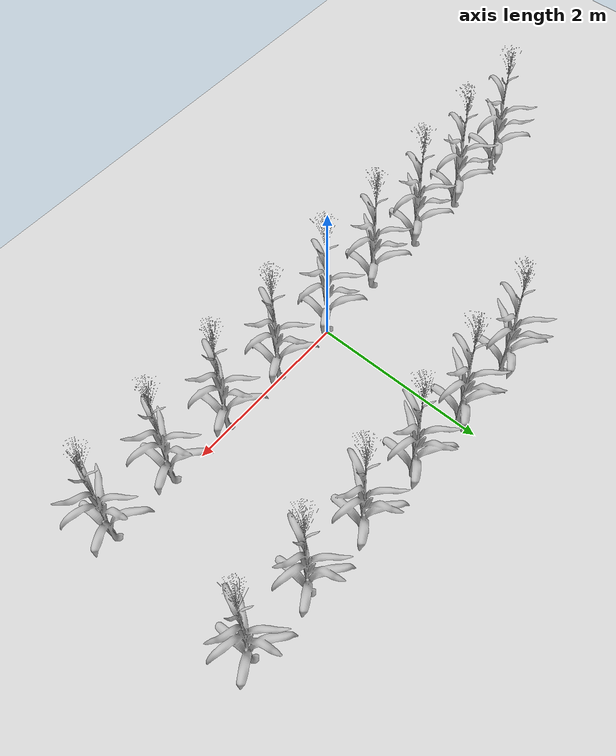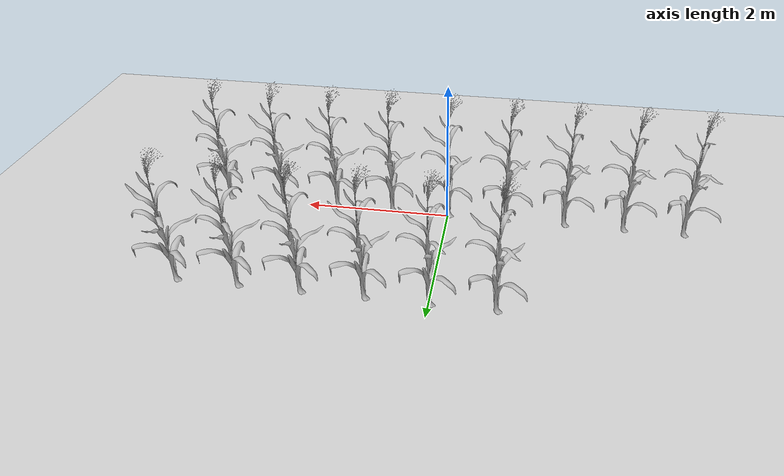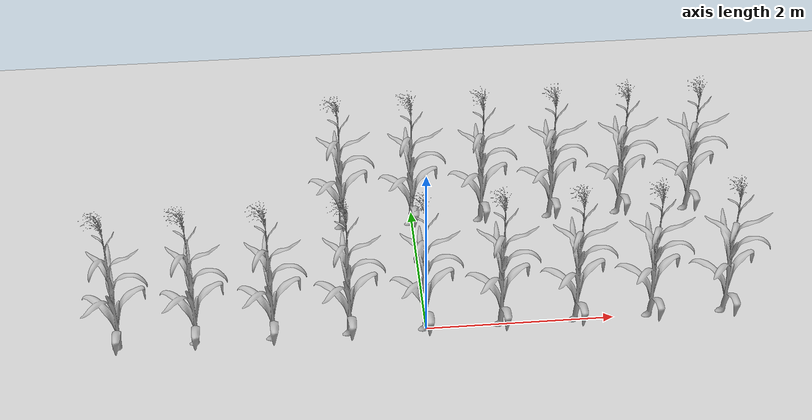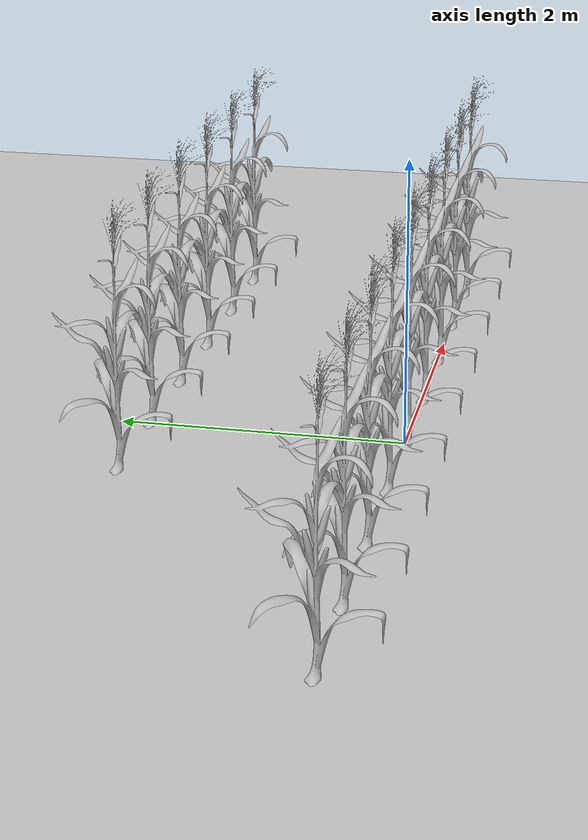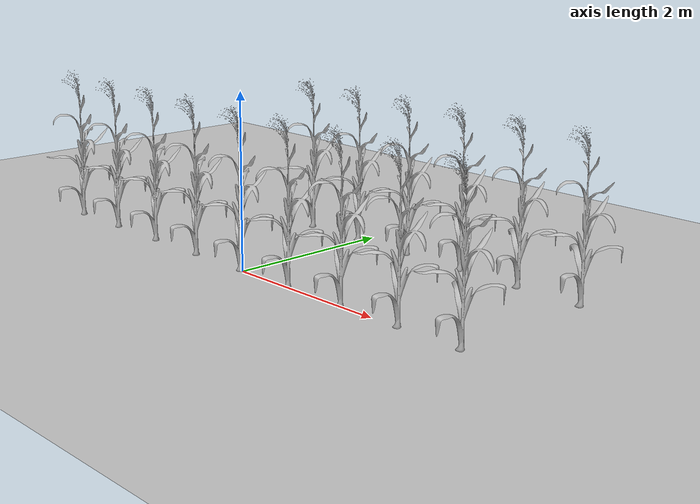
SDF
<sdf version="1.6">
 <world name="default">
  <model name="ground_plane">
   <static>1</static>
   <link name="link">
    <collision name="collision">
     <geometry><plane><normal>0 0 1</normal><size>100 100</size></plane></geometry>
     <surface><friction><ode><mu>100</mu><mu2>50</mu2></ode></friction></surface>
    </collision>
    <visual name="visual">
     <cast_shadows>0</cast_shadows>
     <geometry><plane><normal>0 0 1</normal><size>1000 1000</size></plane></geometry>
     <material>
      <script><uri>file://media/materials/scripts/gazebo.material</uri><name>Gazebo/Grey</name></script>
     </material>
    </visual>
    <velocity_decay><linear>0</linear><angular>0</angular></velocity_decay>
   </link>
  </model>
  <model name="corn_stalk_0,0">
   <static>1</static>
   <link name="link">
    <visual name="visual">
     <geometry><mesh><uri>model://corn/meshes/corn_stack.stl</uri><scale>0.01 0.01 0.01</scale></mesh></geometry>
     <material>
      <script>
       <uri>model://corn/materials/scripts</uri>
       <uri>model://corn/materials/textures</uri>
       <name>corn_stack/Diffuse</name>
      </script>
     </material>
    </visual>
    <collision name="Default">
     <geometry><mesh><uri>model://corn/meshes/corn_stack.stl</uri><scale>0.01 0.01 0.01</scale></mesh></geometry>
    </collision>
   </link>
  </model>
  <model name="corn_stalk_1,0">
   <static>1</static>
   <link name="link">
    <pose>0.8 0 0 0 -0 0</pose>
    <visual name="visual">
     <geometry><mesh><uri>model://corn/meshes/corn_stack.stl</uri><scale>0.01 0.01 0.01</scale></mesh></geometry>
     <material>
      <script>
       <uri>model://corn/materials/scripts</uri>
       <uri>model://corn/materials/textures</uri>
       <name>corn_stack/Diffuse</name>
      </script>
     </material>
    </visual>
    <collision name="Default">
     <geometry><mesh><uri>model://corn/meshes/corn_stack.stl</uri><scale>0.01 0.01 0.01</scale></mesh></geometry>
    </collision>
   </link>
  </model>
  <model name="corn_stalk_2,0">
   <static>1</static>
   <link name="link">
    <pose>1.6 0 0 0 -0 0</pose>
    <visual name="visual">
     <geometry><mesh><uri>model://corn/meshes/corn_stack.stl</uri><scale>0.01 0.01 0.01</scale></mesh></geometry>
     <material>
      <script>
       <uri>model://corn/materials/scripts</uri>
       <uri>model://corn/materials/textures</uri>
       <name>corn_stack/Diffuse</name>
      </script>
     </material>
    </visual>
    <collision name="Default">
     <geometry><mesh><uri>model://corn/meshes/corn_stack.stl</uri><scale>0.01 0.01 0.01</scale></mesh></geometry>
    </collision>
   </link>
  </model>
  <model name="corn_stalk_3,0">
   <static>1</static>
   <link name="link">
    <pose>2.4 0 0 0 -0 0</pose>
    <visual name="visual">
     <geometry><mesh><uri>model://corn/meshes/corn_stack.stl</uri><scale>0.01 0.01 0.01</scale></mesh></geometry>
     <material>
      <script>
       <uri>model://corn/materials/scripts</uri>
       <uri>model://corn/materials/textures</uri>
       <name>corn_stack/Diffuse</name>
      </script>
     </material>
    </visual>
    <collision name="Default">
     <geometry><mesh><uri>model://corn/meshes/corn_stack.stl</uri><scale>0.01 0.01 0.01</scale></mesh></geometry>
    </collision>
   </link>
  </model>
  <model name="corn_stalk_4,0">
   <static>1</static>
   <link name="link">
    <pose>3.2 0 0 0 -0 0</pose>
    <visual name="visual">
     <geometry><mesh><uri>model://corn/meshes/corn_stack.stl</uri><scale>0.01 0.01 0.01</scale></mesh></geometry>
     <material>
      <script>
       <uri>model://corn/materials/scripts</uri>
       <uri>model://corn/materials/textures</uri>
       <name>corn_stack/Diffuse</name>
      </script>
     </material>
    </visual>
    <collision name="Default">
     <geometry><mesh><uri>model://corn/meshes/corn_stack.stl</uri><scale>0.01 0.01 0.01</scale></mesh></geometry>
    </collision>
   </link>
  </model>
  <model name="corn_stalk_-1,0">
   <static>1</static>
   <link name="link">
    <pose>-0.8 0 0 0 -0 0</pose>
    <visual name="visual">
     <geometry><mesh><uri>model://corn/meshes/corn_stack.stl</uri><scale>0.01 0.01 0.01</scale></mesh></geometry>
     <material>
      <script>
       <uri>model://corn/materials/scripts</uri>
       <uri>model://corn/materials/textures</uri>
       <name>corn_stack/Diffuse</name>
      </script>
     </material>
    </visual>
    <collision name="Default">
     <geometry><mesh><uri>model://corn/meshes/corn_stack.stl</uri><scale>0.01 0.01 0.01</scale></mesh></geometry>
    </collision>
   </link>
  </model>
  <model name="corn_stalk_-2,0">
   <static>1</static>
   <link name="link">
    <pose>-1.6 0 0 0 -0 0</pose>
    <visual name="visual">
     <geometry><mesh><uri>model://corn/meshes/corn_stack.stl</uri><scale>0.01 0.01 0.01</scale></mesh></geometry>
     <material>
      <script>
       <uri>model://corn/materials/scripts</uri>
       <uri>model://corn/materials/textures</uri>
       <name>corn_stack/Diffuse</name>
      </script>
     </material>
    </visual>
    <collision name="Default">
     <geometry><mesh><uri>model://corn/meshes/corn_stack.stl</uri><scale>0.01 0.01 0.01</scale></mesh></geometry>
    </collision>
   </link>
  </model>
  <model name="corn_stalk_-3,0">
   <static>1</static>
   <link name="link">
    <pose>-2.4 0 0 0 -0 0</pose>
    <visual name="visual">
     <geometry><mesh><uri>model://corn/meshes/corn_stack.stl</uri><scale>0.01 0.01 0.01</scale></mesh></geometry>
     <material>
      <script>
       <uri>model://corn/materials/scripts</uri>
       <uri>model://corn/materials/textures</uri>
       <name>corn_stack/Diffuse</name>
      </script>
     </material>
    </visual>
    <collision name="Default">
     <geometry><mesh><uri>model://corn/meshes/corn_stack.stl</uri><scale>0.01 0.01 0.01</scale></mesh></geometry>
    </collision>
   </link>
  </model>
  <model name="corn_stalk_-4,0">
   <static>1</static>
   <link name="link">
    <pose>-3.2 0 0 0 -0 0</pose>
    <visual name="visual">
     <geometry><mesh><uri>model://corn/meshes/corn_stack.stl</uri><scale>0.01 0.01 0.01</scale></mesh></geometry>
     <material>
      <script>
       <uri>model://corn/materials/scripts</uri>
       <uri>model://corn/materials/textures</uri>
       <name>corn_stack/Diffuse</name>
      </script>
     </material>
    </visual>
    <collision name="Default">
     <geometry><mesh><uri>model://corn/meshes/corn_stack.stl</uri><scale>0.01 0.01 0.01</scale></mesh></geometry>
    </collision>
   </link>
  </model>
  <model name="corn_stalk_0,1">
   <static>1</static>
   <link name="link">
    <pose>0 1.8 0 0 -0 0</pose>
    <visual name="visual">
     <geometry><mesh><uri>model://corn/meshes/corn_stack.stl</uri><scale>0.01 0.01 0.01</scale></mesh></geometry>
     <material>
      <script>
       <uri>model://corn/materials/scripts</uri>
       <uri>model://corn/materials/textures</uri>
       <name>corn_stack/Diffuse</name>
      </script>
     </material>
    </visual>
    <collision name="Default">
     <geometry><mesh><uri>model://corn/meshes/corn_stack.stl</uri><scale>0.01 0.01 0.01</scale></mesh></geometry>
    </collision>
   </link>
  </model>
  <model name="corn_stalk_1,1">
   <static>1</static>
   <link name="link">
    <pose>0.8 1.8 0 0 -0 0</pose>
    <visual name="visual">
     <geometry><mesh><uri>model://corn/meshes/corn_stack.stl</uri><scale>0.01 0.01 0.01</scale></mesh></geometry>
     <material>
      <script>
       <uri>model://corn/materials/scripts</uri>
       <uri>model://corn/materials/textures</uri>
       <name>corn_stack/Diffuse</name>
      </script>
     </material>
    </visual>
    <collision name="Default">
     <geometry><mesh><uri>model://corn/meshes/corn_stack.stl</uri><scale>0.01 0.01 0.01</scale></mesh></geometry>
    </collision>
   </link>
  </model>
  <model name="corn_stalk_2,1">
   <static>1</static>
   <link name="link">
    <pose>1.6 1.8 0 0 -0 0</pose>
    <visual name="visual">
     <geometry><mesh><uri>model://corn/meshes/corn_stack.stl</uri><scale>0.01 0.01 0.01</scale></mesh></geometry>
     <material>
      <script>
       <uri>model://corn/materials/scripts</uri>
       <uri>model://corn/materials/textures</uri>
       <name>corn_stack/Diffuse</name>
      </script>
     </material>
    </visual>
    <collision name="Default">
     <geometry><mesh><uri>model://corn/meshes/corn_stack.stl</uri><scale>0.01 0.01 0.01</scale></mesh></geometry>
    </collision>
   </link>
  </model>
  <model name="corn_stalk_3,1">
   <static>1</static>
   <link name="link">
    <pose>2.4 1.8 0 0 -0 0</pose>
    <visual name="visual">
     <geometry><mesh><uri>model://corn/meshes/corn_stack.stl</uri><scale>0.01 0.01 0.01</scale></mesh></geometry>
     <material>
      <script>
       <uri>model://corn/materials/scripts</uri>
       <uri>model://corn/materials/textures</uri>
       <name>corn_stack/Diffuse</name>
      </script>
     </material>
    </visual>
    <collision name="Default">
     <geometry><mesh><uri>model://corn/meshes/corn_stack.stl</uri><scale>0.01 0.01 0.01</scale></mesh></geometry>
    </collision>
   </link>
  </model>
  <model name="corn_stalk_4,1">
   <static>1</static>
   <link name="link">
    <pose>3.2 1.8 0 0 -0 0</pose>
    <visual name="visual">
     <geometry><mesh><uri>model://corn/meshes/corn_stack.stl</uri><scale>0.01 0.01 0.01</scale></mesh></geometry>
     <material>
      <script>
       <uri>model://corn/materials/scripts</uri>
       <uri>model://corn/materials/textures</uri>
       <name>corn_stack/Diffuse</name>
      </script>
     </material>
    </visual>
    <collision name="Default">
     <geometry><mesh><uri>model://corn/meshes/corn_stack.stl</uri><scale>0.01 0.01 0.01</scale></mesh></geometry>
    </collision>
   </link>
  </model>
  <model name="corn_stalk_-1,1">
   <static>1</static>
   <link name="link">
    <pose>-0.8 1.8 0 0 -0 0</pose>
    <visual name="visual">
     <geometry><mesh><uri>model://corn/meshes/corn_stack.stl</uri><scale>0.01 0.01 0.01</scale></mesh></geometry>
     <material>
      <script>
       <uri>model://corn/materials/scripts</uri>
       <uri>model://corn/materials/textures</uri>
       <name>corn_stack/Diffuse</name>
      </script>
     </material>
    </visual>
    <collision name="Default">
     <geometry><mesh><uri>model://corn/meshes/corn_stack.stl</uri><scale>0.01 0.01 0.01</scale></mesh></geometry>
    </collision>
   </link>
  </model>
 </world>
</sdf>
